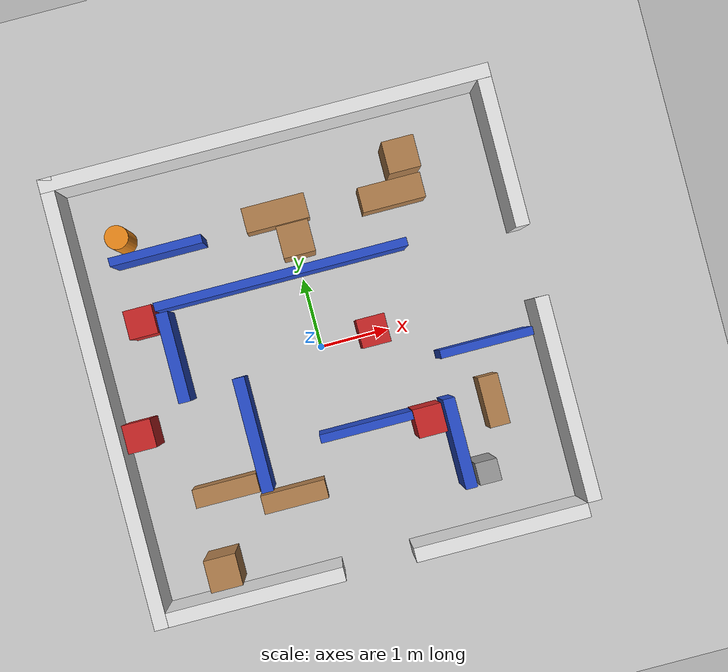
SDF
<?xml version="1.0" ?>
<sdf version='1.7'>
  <world name='default'>

    <light name='sun' type='directional'>
      <cast_shadows>1</cast_shadows>
      <pose>0 0 10 0 0 0</pose>
      <diffuse>0.8 0.8 0.8 1</diffuse>
      <specular>0.2 0.2 0.2 1</specular>
      <attenuation><range>1000</range><constant>0.9</constant><linear>0.01</linear><quadratic>0.001</quadratic></attenuation>
      <direction>-0.5 0.1 -0.9</direction>
    </light>

    <gravity>0 0 -9.8</gravity>
    <atmosphere type='adiabatic'/>
    <physics type='ode'>
      <max_step_size>0.001</max_step_size>
      <real_time_factor>1</real_time_factor>
      <real_time_update_rate>1000</real_time_update_rate>
    </physics>
    <scene>
      <ambient>0.4 0.4 0.4 1</ambient>
      <background>0.7 0.7 0.7 1</background>
      <shadows>1</shadows>
    </scene>

    <gui fullscreen='0'>
      <camera name='user_camera'>
        <pose>0 0 14.0 0 1.5708 0</pose>
        <view_controller>orbit</view_controller>
        <projection_type>perspective</projection_type>
      </camera>
    </gui>

    <!-- ground -->
    <model name='ground_plane'>
      <static>1</static>
      <link name='link'>
        <collision name='collision'>
          <geometry><plane><normal>0 0 1</normal><size>20 20</size></plane></geometry>
          <surface><friction><ode><mu>100</mu><mu2>50</mu2></ode></friction></surface>
        </collision>
        <visual name='visual'>
          <cast_shadows>0</cast_shadows>
          <geometry><plane><normal>0 0 1</normal><size>20 20</size></plane></geometry>
          <material><script><uri>file://media/materials/scripts/gazebo.material</uri><name>Gazebo/Grey</name></script></material>
        </visual>
      </link>
    </model>

    <!-- == WALLS  6x6m, 0.2m thick, 0.5m tall == -->
    <!-- north -->
    <model name='wall_north'><static>1</static><pose>0 3.1 0.25 0 0 0</pose><link name='link'>
      <collision name='c'><geometry><box><size>6.4 0.2 0.5</size></box></geometry></collision>
      <visual name='v'><geometry><box><size>6.4 0.2 0.5</size></box></geometry><material><script><uri>file://media/materials/scripts/gazebo.material</uri><name>Gazebo/White</name></script></material></visual>
    </link></model>

    <!-- south left -->
    <model name='wall_south_left'><static>1</static><pose>-1.738 -3.1 0.25 0 0 0</pose><link name='link'>
      <collision name='c'><geometry><box><size>2.524 0.2 0.5</size></box></geometry></collision>
      <visual name='v'><geometry><box><size>2.524 0.2 0.5</size></box></geometry><material><script><uri>file://media/materials/scripts/gazebo.material</uri><name>Gazebo/White</name></script></material></visual>
    </link></model>

    <!-- south right -->
    <model name='wall_south_right'><static>1</static><pose>1.762 -3.1 0.25 0 0 0</pose><link name='link'>
      <collision name='c'><geometry><box><size>2.476 0.2 0.5</size></box></geometry></collision>
      <visual name='v'><geometry><box><size>2.476 0.2 0.5</size></box></geometry><material><script><uri>file://media/materials/scripts/gazebo.material</uri><name>Gazebo/White</name></script></material></visual>
    </link></model>

    <!-- west -->
    <model name='wall_west'><static>1</static><pose>-3.1 0 0.25 0 0 0</pose><link name='link'>
      <collision name='c'><geometry><box><size>0.2 6.4 0.5</size></box></geometry></collision>
      <visual name='v'><geometry><box><size>0.2 6.4 0.5</size></box></geometry><material><script><uri>file://media/materials/scripts/gazebo.material</uri><name>Gazebo/White</name></script></material></visual>
    </link></model>

    <!-- east top -->
    <model name='wall_east_top'><static>1</static><pose>3.1 1.952 0.25 0 0 0</pose><link name='link'>
      <collision name='c'><geometry><box><size>0.2 2.095 0.5</size></box></geometry></collision>
      <visual name='v'><geometry><box><size>0.2 2.095 0.5</size></box></geometry><material><script><uri>file://media/materials/scripts/gazebo.material</uri><name>Gazebo/White</name></script></material></visual>
    </link></model>

    <!-- east bottom -->
    <model name='wall_east_bottom'><static>1</static><pose>3.1 -1.548 0.25 0 0 0</pose><link name='link'>
      <collision name='c'><geometry><box><size>0.2 2.905 0.5</size></box></geometry></collision>
      <visual name='v'><geometry><box><size>0.2 2.905 0.5</size></box></geometry><material><script><uri>file://media/materials/scripts/gazebo.material</uri><name>Gazebo/White</name></script></material></visual>
    </link></model>

    <!-- == DIVIDERS  0.12m wide, 0.5m tall == -->
    <model name='divider_main'><static>1</static><pose>-0.287 1.103 0.25 0 0 0</pose><link name='link'>
      <collision name='c'><geometry><box><size>3.595 0.12 0.5</size></box></geometry></collision>
      <visual name='v'><geometry><box><size>3.595 0.12 0.5</size></box></geometry><material><script><uri>file://media/materials/scripts/gazebo.material</uri><name>Gazebo/Blue</name></script></material></visual>
    </link></model>

    <model name='divider_short1'><static>1</static><pose>-1.868 1.855 0.25 0 0 0</pose><link name='link'>
      <collision name='c'><geometry><box><size>1.317 0.12 0.5</size></box></geometry></collision>
      <visual name='v'><geometry><box><size>1.317 0.12 0.5</size></box></geometry><material><script><uri>file://media/materials/scripts/gazebo.material</uri><name>Gazebo/Blue</name></script></material></visual>
    </link></model>

    <model name='divider_short2'><static>1</static><pose>2.215 -0.518 0.25 0 0 0</pose><link name='link'>
      <collision name='c'><geometry><box><size>1.317 0.12 0.5</size></box></geometry></collision>
      <visual name='v'><geometry><box><size>1.317 0.12 0.5</size></box></geometry><material><script><uri>file://media/materials/scripts/gazebo.material</uri><name>Gazebo/Blue</name></script></material></visual>
    </link></model>

    <model name='divider_short3'><static>1</static><pose>0.326 -1.227 0.25 0 0 0</pose><link name='link'>
      <collision name='c'><geometry><box><size>1.317 0.12 0.5</size></box></geometry></collision>
      <visual name='v'><geometry><box><size>1.317 0.12 0.5</size></box></geometry><material><script><uri>file://media/materials/scripts/gazebo.material</uri><name>Gazebo/Blue</name></script></material></visual>
    </link></model>

    <model name='divider_vert1'><static>1</static><pose>-2.005 0.370 0.25 0 0 0</pose><link name='link'>
      <collision name='c'><geometry><box><size>0.17 1.275 0.5</size></box></geometry></collision>
      <visual name='v'><geometry><box><size>0.17 1.275 0.5</size></box></geometry><material><script><uri>file://media/materials/scripts/gazebo.material</uri><name>Gazebo/Blue</name></script></material></visual>
    </link></model>

    <model name='divider_vert2'><static>1</static><pose>-1.212 -0.937 0.25 0 0 0</pose><link name='link'>
      <collision name='c'><geometry><box><size>0.17 1.623 0.5</size></box></geometry></collision>
      <visual name='v'><geometry><box><size>0.17 1.623 0.5</size></box></geometry><material><script><uri>file://media/materials/scripts/gazebo.material</uri><name>Gazebo/Blue</name></script></material></visual>
    </link></model>

    <model name='divider_vert3'><static>1</static><pose>1.513 -1.767 0.25 0 0 0</pose><link name='link'>
      <collision name='c'><geometry><box><size>0.17 1.275 0.5</size></box></geometry></collision>
      <visual name='v'><geometry><box><size>0.17 1.275 0.5</size></box></geometry><material><script><uri>file://media/materials/scripts/gazebo.material</uri><name>Gazebo/Blue</name></script></material></visual>
    </link></model>

    <!-- == SHELVES  0.3m tall == -->
    <model name='shelf_sw1'><static>1</static><pose>-1.798 -1.618 0.15 0 0 0</pose><link name='link'>
      <collision name='c'><geometry><box><size>0.927 0.267 0.3</size></box></geometry></collision>
      <visual name='v'><geometry><box><size>0.927 0.267 0.3</size></box></geometry><material><script><uri>file://media/materials/scripts/gazebo.material</uri><name>Gazebo/Wood</name></script></material></visual>
    </link></model>

    <model name='shelf_sw2'><static>1</static><pose>-0.890 -1.942 0.15 0 0 0</pose><link name='link'>
      <collision name='c'><geometry><box><size>0.927 0.267 0.3</size></box></geometry></collision>
      <visual name='v'><geometry><box><size>0.927 0.267 0.3</size></box></geometry><material><script><uri>file://media/materials/scripts/gazebo.material</uri><name>Gazebo/Wood</name></script></material></visual>
    </link></model>

    <model name='shelf_nw1'><static>1</static><pose>1.501 1.842 0.15 0 0 0</pose><link name='link'>
      <collision name='c'><geometry><box><size>0.905 0.357 0.3</size></box></geometry></collision>
      <visual name='v'><geometry><box><size>0.905 0.357 0.3</size></box></geometry><material><script><uri>file://media/materials/scripts/gazebo.material</uri><name>Gazebo/Wood</name></script></material></visual>
    </link></model>

    <model name='shelf_nw2'><static>1</static><pose>-0.148 1.976 0.15 0 0 0</pose><link name='link'>
      <collision name='c'><geometry><box><size>0.905 0.357 0.3</size></box></geometry></collision>
      <visual name='v'><geometry><box><size>0.905 0.357 0.3</size></box></geometry><material><script><uri>file://media/materials/scripts/gazebo.material</uri><name>Gazebo/Wood</name></script></material></visual>
    </link></model>

    <model name='shelf_mid'><static>1</static><pose>2.151 -1.340 0.15 0 0 0</pose><link name='link'>
      <collision name='c'><geometry><box><size>0.288 0.727 0.3</size></box></geometry></collision>
      <visual name='v'><geometry><box><size>0.288 0.727 0.3</size></box></geometry><material><script><uri>file://media/materials/scripts/gazebo.material</uri><name>Gazebo/Wood</name></script></material></visual>
    </link></model>

    <!-- == BOX OBSTACLES  0.5m tall == -->
    <model name='box1'><static>1</static><pose>1.191 -1.360 0.25 0 0 0</pose><link name='link'>
      <collision name='c'><geometry><box><size>0.405 0.405 0.5</size></box></geometry></collision>
      <visual name='v'><geometry><box><size>0.405 0.405 0.5</size></box></geometry><material><script><uri>file://media/materials/scripts/gazebo.material</uri><name>Gazebo/Red</name></script></material></visual>
    </link></model>

    <model name='box2'><static>1</static><pose>0.751 0.031 0.25 0 0 0</pose><link name='link'>
      <collision name='c'><geometry><box><size>0.405 0.405 0.5</size></box></geometry></collision>
      <visual name='v'><geometry><box><size>0.405 0.405 0.5</size></box></geometry><material><script><uri>file://media/materials/scripts/gazebo.material</uri><name>Gazebo/Red</name></script></material></visual>
    </link></model>

    <model name='box3'><static>1</static><pose>-2.315 0.953 0.25 0 0 0</pose><link name='link'>
      <collision name='c'><geometry><box><size>0.405 0.405 0.5</size></box></geometry></collision>
      <visual name='v'><geometry><box><size>0.405 0.405 0.5</size></box></geometry><material><script><uri>file://media/materials/scripts/gazebo.material</uri><name>Gazebo/Red</name></script></material></visual>
    </link></model>

    <model name='box4'><static>1</static><pose>-2.729 -0.561 0.25 0 0 0</pose><link name='link'>
      <collision name='c'><geometry><box><size>0.405 0.405 0.5</size></box></geometry></collision>
      <visual name='v'><geometry><box><size>0.405 0.405 0.5</size></box></geometry><material><script><uri>file://media/materials/scripts/gazebo.material</uri><name>Gazebo/Red</name></script></material></visual>
    </link></model>

    <!-- == PILLAR  0.5m tall == -->
    <model name='pillar1'><static>1</static><pose>1.787 -2.241 0.25 0 0 0</pose><link name='link'>
      <collision name='c'><geometry><box><size>0.310 0.310 0.5</size></box></geometry></collision>
      <visual name='v'><geometry><box><size>0.310 0.310 0.5</size></box></geometry><material><script><uri>file://media/materials/scripts/gazebo.material</uri><name>Gazebo/Grey</name></script></material></visual>
    </link></model>

    <!-- == CABINETS  0.5m tall == -->
    <model name='cabinet_nw1'><static>1</static><pose>1.731 2.280 0.25 0 0 0</pose><link name='link'>
      <collision name='c'><geometry><box><size>0.452 0.452 0.5</size></box></geometry></collision>
      <visual name='v'><geometry><box><size>0.452 0.452 0.5</size></box></geometry><material><script><uri>file://media/materials/scripts/gazebo.material</uri><name>Gazebo/WoodPallet</name></script></material></visual>
    </link></model>

    <model name='cabinet_ne1'><static>1</static><pose>0.037 1.523 0.25 0 0 0</pose><link name='link'>
      <collision name='c'><geometry><box><size>0.452 0.452 0.5</size></box></geometry></collision>
      <visual name='v'><geometry><box><size>0.452 0.452 0.5</size></box></geometry><material><script><uri>file://media/materials/scripts/gazebo.material</uri><name>Gazebo/WoodPallet</name></script></material></visual>
    </link></model>

    <model name='cabinet_sw1'><static>1</static><pose>-2.088 -2.668 0.25 0 0 0</pose><link name='link'>
      <collision name='c'><geometry><box><size>0.452 0.452 0.5</size></box></geometry></collision>
      <visual name='v'><geometry><box><size>0.452 0.452 0.5</size></box></geometry><material><script><uri>file://media/materials/scripts/gazebo.material</uri><name>Gazebo/WoodPallet</name></script></material></visual>
    </link></model>

    <!-- == CYLINDER  r=0.167m, 0.5m tall == -->
    <model name='cylinder1'><static>1</static><pose>-2.340 2.162 0.25 0 0 0</pose><link name='link'>
      <collision name='c'><geometry><cylinder><radius>0.167</radius><length>0.5</length></cylinder></geometry></collision>
      <visual name='v'><geometry><cylinder><radius>0.167</radius><length>0.5</length></cylinder></geometry><material><script><uri>file://media/materials/scripts/gazebo.material</uri><name>Gazebo/Orange</name></script></material></visual>
    </link></model>

  </world>
</sdf>
